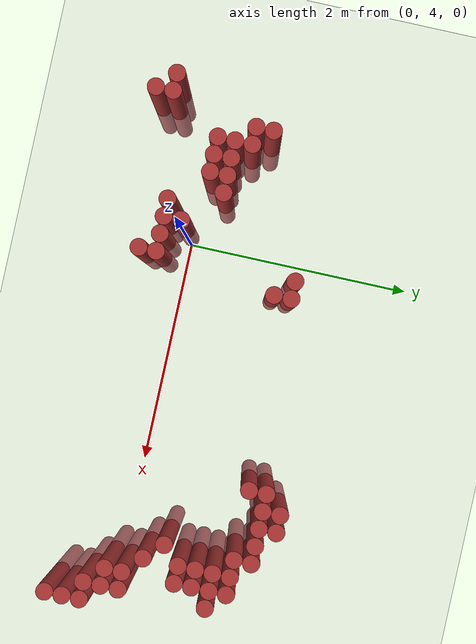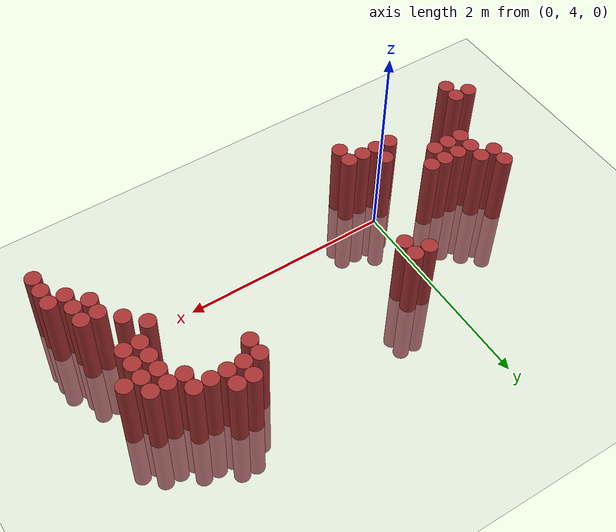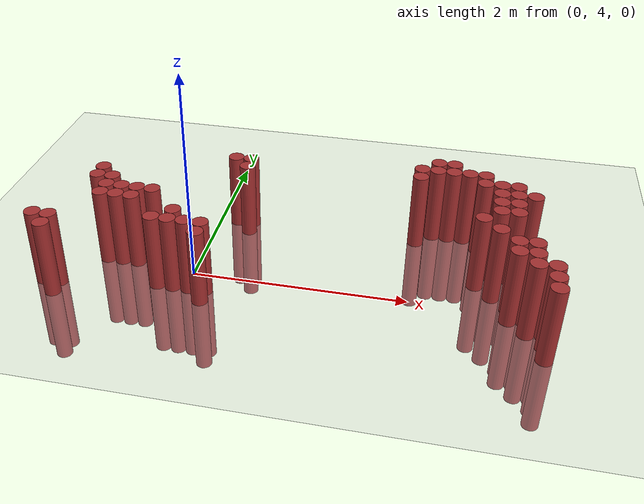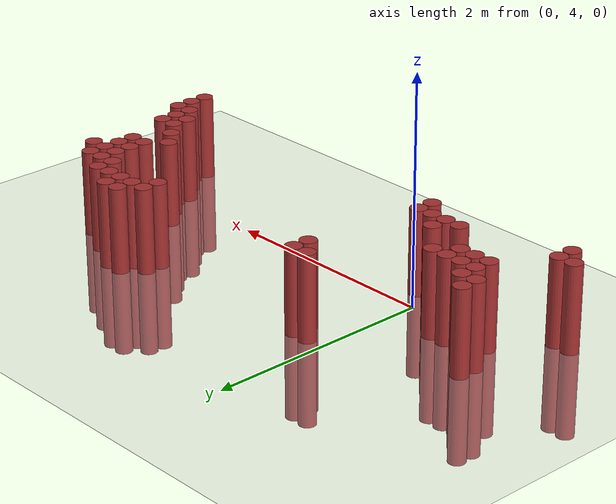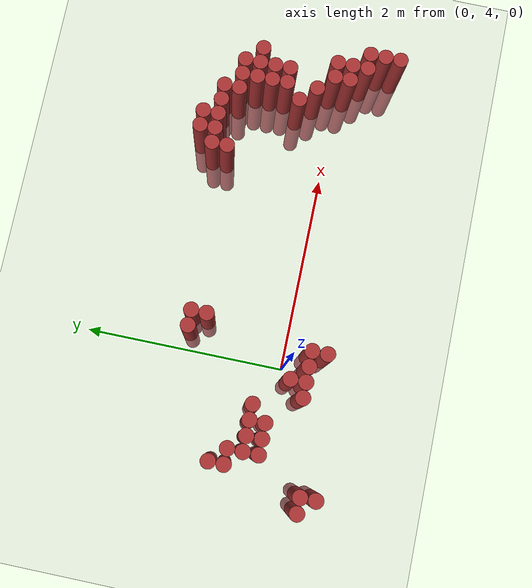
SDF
<sdf version="1.6">
 <world name="default">
  <model name="ground_plane">
   <static>1</static>
   <link name="link">
    <collision name="collision">
     <geometry><plane><normal>0 0 1</normal><size>100 100</size></plane></geometry>
     <surface><friction><ode><mu>100</mu><mu2>50</mu2></ode></friction></surface>
    </collision>
    <visual name="visual">
     <cast_shadows>0</cast_shadows>
     <geometry><plane><normal>0 0 1</normal><size>100 100</size></plane></geometry>
     <material>
      <script><uri>file://media/materials/scripts/gazebo.material</uri><name>Gazebo/Grey</name></script>
     </material>
    </visual>
   </link>
  </model>
  <model name="unit_cylinder_390">
   <static>1</static>
   <pose>-1.325000 3.625000 0.000000 0.000000 0.000000 0.000000</pose>
   <link name="link">
    <inertial>
     <mass>1</mass>
     <inertia><ixx>0.145833</ixx><ixy>0</ixy><ixz>0</ixz><iyy>0.145833</iyy><iyz>0</iyz><izz>0.125</izz></inertia>
    </inertial>
    <collision name="collision">
     <geometry><cylinder><radius>0.075000</radius><length>1.5</length></cylinder></geometry>
    </collision>
    <visual name="visual">
     <geometry><cylinder><radius>0.075000</radius><length>1.5</length></cylinder></geometry>
     <material>
      <ambient>0.648000 0.192000 0.192000 1</ambient>
      <diffuse>0.648000 0.192000 0.192000 1</diffuse>
     </material>
     <material>
      <script><name>Gazebo/Grey</name><uri>file://media/materials/scripts/gazebo.material</uri></script>
     </material>
    </visual>
   </link>
  </model>
  <model name="unit_cylinder_394">
   <static>1</static>
   <pose>-1.175000 3.475000 0.000000 0.000000 0.000000 0.000000</pose>
   <link name="link">
    <inertial>
     <mass>1</mass>
     <inertia><ixx>0.145833</ixx><ixy>0</ixy><ixz>0</ixz><iyy>0.145833</iyy><iyz>0</iyz><izz>0.125</izz></inertia>
    </inertial>
    <collision name="collision">
     <geometry><cylinder><radius>0.075000</radius><length>1.5</length></cylinder></geometry>
    </collision>
    <visual name="visual">
     <geometry><cylinder><radius>0.075000</radius><length>1.5</length></cylinder></geometry>
     <material>
      <ambient>0.648000 0.192000 0.192000 1</ambient>
      <diffuse>0.648000 0.192000 0.192000 1</diffuse>
     </material>
     <material>
      <script><name>Gazebo/Grey</name><uri>file://media/materials/scripts/gazebo.material</uri></script>
     </material>
    </visual>
   </link>
  </model>
  <model name="unit_cylinder_395">
   <static>1</static>
   <pose>-1.175000 3.625000 0.000000 0.000000 0.000000 0.000000</pose>
   <link name="link">
    <inertial>
     <mass>1</mass>
     <inertia><ixx>0.145833</ixx><ixy>0</ixy><ixz>0</ixz><iyy>0.145833</iyy><iyz>0</iyz><izz>0.125</izz></inertia>
    </inertial>
    <collision name="collision">
     <geometry><cylinder><radius>0.075000</radius><length>1.5</length></cylinder></geometry>
    </collision>
    <visual name="visual">
     <geometry><cylinder><radius>0.075000</radius><length>1.5</length></cylinder></geometry>
     <material>
      <ambient>0.648000 0.192000 0.192000 1</ambient>
      <diffuse>0.648000 0.192000 0.192000 1</diffuse>
     </material>
     <material>
      <script><name>Gazebo/Grey</name><uri>file://media/materials/scripts/gazebo.material</uri></script>
     </material>
    </visual>
   </link>
  </model>
  <model name="unit_cylinder_398">
   <static>1</static>
   <pose>-1.025000 4.375000 0.000000 0.000000 0.000000 0.000000</pose>
   <link name="link">
    <inertial>
     <mass>1</mass>
     <inertia><ixx>0.145833</ixx><ixy>0</ixy><ixz>0</ixz><iyy>0.145833</iyy><iyz>0</iyz><izz>0.125</izz></inertia>
    </inertial>
    <collision name="collision">
     <geometry><cylinder><radius>0.075000</radius><length>1.5</length></cylinder></geometry>
    </collision>
    <visual name="visual">
     <geometry><cylinder><radius>0.075000</radius><length>1.5</length></cylinder></geometry>
     <material>
      <ambient>0.648000 0.192000 0.192000 1</ambient>
      <diffuse>0.648000 0.192000 0.192000 1</diffuse>
     </material>
     <material>
      <script><name>Gazebo/Grey</name><uri>file://media/materials/scripts/gazebo.material</uri></script>
     </material>
    </visual>
   </link>
  </model>
  <model name="unit_cylinder_399">
   <static>1</static>
   <pose>-1.025000 4.525000 0.000000 0.000000 0.000000 0.000000</pose>
   <link name="link">
    <inertial>
     <mass>1</mass>
     <inertia><ixx>0.145833</ixx><ixy>0</ixy><ixz>0</ixz><iyy>0.145833</iyy><iyz>0</iyz><izz>0.125</izz></inertia>
    </inertial>
    <collision name="collision">
     <geometry><cylinder><radius>0.075000</radius><length>1.5</length></cylinder></geometry>
    </collision>
    <visual name="visual">
     <geometry><cylinder><radius>0.075000</radius><length>1.5</length></cylinder></geometry>
     <material>
      <ambient>0.648000 0.192000 0.192000 1</ambient>
      <diffuse>0.648000 0.192000 0.192000 1</diffuse>
     </material>
     <material>
      <script><name>Gazebo/Grey</name><uri>file://media/materials/scripts/gazebo.material</uri></script>
     </material>
    </visual>
   </link>
  </model>
  <model name="unit_cylinder_405">
   <static>1</static>
   <pose>-0.875000 4.075000 0.000000 0.000000 0.000000 0.000000</pose>
   <link name="link">
    <inertial>
     <mass>1</mass>
     <inertia><ixx>0.145833</ixx><ixy>0</ixy><ixz>0</ixz><iyy>0.145833</iyy><iyz>0</iyz><izz>0.125</izz></inertia>
    </inertial>
    <collision name="collision">
     <geometry><cylinder><radius>0.075000</radius><length>1.5</length></cylinder></geometry>
    </collision>
    <visual name="visual">
     <geometry><cylinder><radius>0.075000</radius><length>1.5</length></cylinder></geometry>
     <material>
      <ambient>0.648000 0.192000 0.192000 1</ambient>
      <diffuse>0.648000 0.192000 0.192000 1</diffuse>
     </material>
     <material>
      <script><name>Gazebo/Grey</name><uri>file://media/materials/scripts/gazebo.material</uri></script>
     </material>
    </visual>
   </link>
  </model>
  <model name="unit_cylinder_406">
   <static>1</static>
   <pose>-0.875000 4.225000 0.000000 0.000000 0.000000 0.000000</pose>
   <link name="link">
    <inertial>
     <mass>1</mass>
     <inertia><ixx>0.145833</ixx><ixy>0</ixy><ixz>0</ixz><iyy>0.145833</iyy><iyz>0</iyz><izz>0.125</izz></inertia>
    </inertial>
    <collision name="collision">
     <geometry><cylinder><radius>0.075000</radius><length>1.5</length></cylinder></geometry>
    </collision>
    <visual name="visual">
     <geometry><cylinder><radius>0.075000</radius><length>1.5</length></cylinder></geometry>
     <material>
      <ambient>0.648000 0.192000 0.192000 1</ambient>
      <diffuse>0.648000 0.192000 0.192000 1</diffuse>
     </material>
     <material>
      <script><name>Gazebo/Grey</name><uri>file://media/materials/scripts/gazebo.material</uri></script>
     </material>
    </visual>
   </link>
  </model>
  <model name="unit_cylinder_407">
   <static>1</static>
   <pose>-0.875000 4.375000 0.000000 0.000000 0.000000 0.000000</pose>
   <link name="link">
    <inertial>
     <mass>1</mass>
     <inertia><ixx>0.145833</ixx><ixy>0</ixy><ixz>0</ixz><iyy>0.145833</iyy><iyz>0</iyz><izz>0.125</izz></inertia>
    </inertial>
    <collision name="collision">
     <geometry><cylinder><radius>0.075000</radius><length>1.5</length></cylinder></geometry>
    </collision>
    <visual name="visual">
     <geometry><cylinder><radius>0.075000</radius><length>1.5</length></cylinder></geometry>
     <material>
      <ambient>0.648000 0.192000 0.192000 1</ambient>
      <diffuse>0.648000 0.192000 0.192000 1</diffuse>
     </material>
     <material>
      <script><name>Gazebo/Grey</name><uri>file://media/materials/scripts/gazebo.material</uri></script>
     </material>
    </visual>
   </link>
  </model>
  <model name="unit_cylinder_414">
   <static>1</static>
   <pose>-0.725000 4.075000 0.000000 0.000000 0.000000 0.000000</pose>
   <link name="link">
    <inertial>
     <mass>1</mass>
     <inertia><ixx>0.145833</ixx><ixy>0</ixy><ixz>0</ixz><iyy>0.145833</iyy><iyz>0</iyz><izz>0.125</izz></inertia>
    </inertial>
    <collision name="collision">
     <geometry><cylinder><radius>0.075000</radius><length>1.5</length></cylinder></geometry>
    </collision>
    <visual name="visual">
     <geometry><cylinder><radius>0.075000</radius><length>1.5</length></cylinder></geometry>
     <material>
      <ambient>0.648000 0.192000 0.192000 1</ambient>
      <diffuse>0.648000 0.192000 0.192000 1</diffuse>
     </material>
     <material>
      <script><name>Gazebo/Grey</name><uri>file://media/materials/scripts/gazebo.material</uri></script>
     </material>
    </visual>
   </link>
  </model>
  <model name="unit_cylinder_415">
   <static>1</static>
   <pose>-0.725000 4.225000 0.000000 0.000000 0.000000 0.000000</pose>
   <link name="link">
    <inertial>
     <mass>1</mass>
     <inertia><ixx>0.145833</ixx><ixy>0</ixy><ixz>0</ixz><iyy>0.145833</iyy><iyz>0</iyz><izz>0.125</izz></inertia>
    </inertial>
    <collision name="collision">
     <geometry><cylinder><radius>0.075000</radius><length>1.5</length></cylinder></geometry>
    </collision>
    <visual name="visual">
     <geometry><cylinder><radius>0.075000</radius><length>1.5</length></cylinder></geometry>
     <material>
      <ambient>0.648000 0.192000 0.192000 1</ambient>
      <diffuse>0.648000 0.192000 0.192000 1</diffuse>
     </material>
     <material>
      <script><name>Gazebo/Grey</name><uri>file://media/materials/scripts/gazebo.material</uri></script>
     </material>
    </visual>
   </link>
  </model>
  <model name="unit_cylinder_422">
   <static>1</static>
   <pose>-0.575000 4.075000 0.000000 0.000000 0.000000 0.000000</pose>
   <link name="link">
    <inertial>
     <mass>1</mass>
     <inertia><ixx>0.145833</ixx><ixy>0</ixy><ixz>0</ixz><iyy>0.145833</iyy><iyz>0</iyz><izz>0.125</izz></inertia>
    </inertial>
    <collision name="collision">
     <geometry><cylinder><radius>0.075000</radius><length>1.5</length></cylinder></geometry>
    </collision>
    <visual name="visual">
     <geometry><cylinder><radius>0.075000</radius><length>1.5</length></cylinder></geometry>
     <material>
      <ambient>0.648000 0.192000 0.192000 1</ambient>
      <diffuse>0.648000 0.192000 0.192000 1</diffuse>
     </material>
     <material>
      <script><name>Gazebo/Grey</name><uri>file://media/materials/scripts/gazebo.material</uri></script>
     </material>
    </visual>
   </link>
  </model>
  <model name="unit_cylinder_423">
   <static>1</static>
   <pose>-0.575000 4.225000 0.000000 0.000000 0.000000 0.000000</pose>
   <link name="link">
    <inertial>
     <mass>1</mass>
     <inertia><ixx>0.145833</ixx><ixy>0</ixy><ixz>0</ixz><iyy>0.145833</iyy><iyz>0</iyz><izz>0.125</izz></inertia>
    </inertial>
    <collision name="collision">
     <geometry><cylinder><radius>0.075000</radius><length>1.5</length></cylinder></geometry>
    </collision>
    <visual name="visual">
     <geometry><cylinder><radius>0.075000</radius><length>1.5</length></cylinder></geometry>
     <material>
      <ambient>0.648000 0.192000 0.192000 1</ambient>
      <diffuse>0.648000 0.192000 0.192000 1</diffuse>
     </material>
     <material>
      <script><name>Gazebo/Grey</name><uri>file://media/materials/scripts/gazebo.material</uri></script>
     </material>
    </visual>
   </link>
  </model>
  <model name="unit_cylinder_432">
   <static>1</static>
   <pose>-0.425000 4.225000 0.000000 0.000000 0.000000 0.000000</pose>
   <link name="link">
    <inertial>
     <mass>1</mass>
     <inertia><ixx>0.145833</ixx><ixy>0</ixy><ixz>0</ixz><iyy>0.145833</iyy><iyz>0</iyz><izz>0.125</izz></inertia>
    </inertial>
    <collision name="collision">
     <geometry><cylinder><radius>0.075000</radius><length>1.5</length></cylinder></geometry>
    </collision>
    <visual name="visual">
     <geometry><cylinder><radius>0.075000</radius><length>1.5</length></cylinder></geometry>
     <material>
      <ambient>0.648000 0.192000 0.192000 1</ambient>
      <diffuse>0.648000 0.192000 0.192000 1</diffuse>
     </material>
     <material>
      <script><name>Gazebo/Grey</name><uri>file://media/materials/scripts/gazebo.material</uri></script>
     </material>
    </visual>
   </link>
  </model>
  <model name="unit_cylinder_440">
   <static>1</static>
   <pose>-0.275000 3.775000 0.000000 0.000000 0.000000 0.000000</pose>
   <link name="link">
    <inertial>
     <mass>1</mass>
     <inertia><ixx>0.145833</ixx><ixy>0</ixy><ixz>0</ixz><iyy>0.145833</iyy><iyz>0</iyz><izz>0.125</izz></inertia>
    </inertial>
    <collision name="collision">
     <geometry><cylinder><radius>0.075000</radius><length>1.5</length></cylinder></geometry>
    </collision>
    <visual name="visual">
     <geometry><cylinder><radius>0.075000</radius><length>1.5</length></cylinder></geometry>
     <material>
      <ambient>0.648000 0.192000 0.192000 1</ambient>
      <diffuse>0.648000 0.192000 0.192000 1</diffuse>
     </material>
     <material>
      <script><name>Gazebo/Grey</name><uri>file://media/materials/scripts/gazebo.material</uri></script>
     </material>
    </visual>
   </link>
  </model>
  <model name="unit_cylinder_446">
   <static>1</static>
   <pose>-0.125000 3.775000 0.000000 0.000000 0.000000 0.000000</pose>
   <link name="link">
    <inertial>
     <mass>1</mass>
     <inertia><ixx>0.145833</ixx><ixy>0</ixy><ixz>0</ixz><iyy>0.145833</iyy><iyz>0</iyz><izz>0.125</izz></inertia>
    </inertial>
    <collision name="collision">
     <geometry><cylinder><radius>0.075000</radius><length>1.5</length></cylinder></geometry>
    </collision>
    <visual name="visual">
     <geometry><cylinder><radius>0.075000</radius><length>1.5</length></cylinder></geometry>
     <material>
      <ambient>0.648000 0.192000 0.192000 1</ambient>
      <diffuse>0.648000 0.192000 0.192000 1</diffuse>
     </material>
     <material>
      <script><name>Gazebo/Grey</name><uri>file://media/materials/scripts/gazebo.material</uri></script>
     </material>
    </visual>
   </link>
  </model>
  <model name="unit_cylinder_447">
   <static>1</static>
   <pose>-0.125000 3.925000 0.000000 0.000000 0.000000 0.000000</pose>
   <link name="link">
    <inertial>
     <mass>1</mass>
     <inertia><ixx>0.145833</ixx><ixy>0</ixy><ixz>0</ixz><iyy>0.145833</iyy><iyz>0</iyz><izz>0.125</izz></inertia>
    </inertial>
    <collision name="collision">
     <geometry><cylinder><radius>0.075000</radius><length>1.5</length></cylinder></geometry>
    </collision>
    <visual name="visual">
     <geometry><cylinder><radius>0.075000</radius><length>1.5</length></cylinder></geometry>
     <material>
      <ambient>0.648000 0.192000 0.192000 1</ambient>
      <diffuse>0.648000 0.192000 0.192000 1</diffuse>
     </material>
     <material>
      <script><name>Gazebo/Grey</name><uri>file://media/materials/scripts/gazebo.material</uri></script>
     </material>
    </visual>
   </link>
  </model>
  <model name="unit_cylinder_451">
   <static>1</static>
   <pose>0.025000 3.775000 0.000000 0.000000 0.000000 0.000000</pose>
   <link name="link">
    <inertial>
     <mass>1</mass>
     <inertia><ixx>0.145833</ixx><ixy>0</ixy><ixz>0</ixz><iyy>0.145833</iyy><iyz>0</iyz><izz>0.125</izz></inertia>
    </inertial>
    <collision name="collision">
     <geometry><cylinder><radius>0.075000</radius><length>1.5</length></cylinder></geometry>
    </collision>
    <visual name="visual">
     <geometry><cylinder><radius>0.075000</radius><length>1.5</length></cylinder></geometry>
     <material>
      <ambient>0.648000 0.192000 0.192000 1</ambient>
      <diffuse>0.648000 0.192000 0.192000 1</diffuse>
     </material>
     <material>
      <script><name>Gazebo/Grey</name><uri>file://media/materials/scripts/gazebo.material</uri></script>
     </material>
    </visual>
   </link>
  </model>
  <model name="unit_cylinder_455">
   <static>1</static>
   <pose>0.175000 3.625000 0.000000 0.000000 0.000000 0.000000</pose>
   <link name="link">
    <inertial>
     <mass>1</mass>
     <inertia><ixx>0.145833</ixx><ixy>0</ixy><ixz>0</ixz><iyy>0.145833</iyy><iyz>0</iyz><izz>0.125</izz></inertia>
    </inertial>
    <collision name="collision">
     <geometry><cylinder><radius>0.075000</radius><length>1.5</length></cylinder></geometry>
    </collision>
    <visual name="visual">
     <geometry><cylinder><radius>0.075000</radius><length>1.5</length></cylinder></geometry>
     <material>
      <ambient>0.648000 0.192000 0.192000 1</ambient>
      <diffuse>0.648000 0.192000 0.192000 1</diffuse>
     </material>
     <material>
      <script><name>Gazebo/Grey</name><uri>file://media/materials/scripts/gazebo.material</uri></script>
     </material>
    </visual>
   </link>
  </model>
  <model name="unit_cylinder_456">
   <static>1</static>
   <pose>0.175000 3.775000 0.000000 0.000000 0.000000 0.000000</pose>
   <link name="link">
    <inertial>
     <mass>1</mass>
     <inertia><ixx>0.145833</ixx><ixy>0</ixy><ixz>0</ixz><iyy>0.145833</iyy><iyz>0</iyz><izz>0.125</izz></inertia>
    </inertial>
    <collision name="collision">
     <geometry><cylinder><radius>0.075000</radius><length>1.5</length></cylinder></geometry>
    </collision>
    <visual name="visual">
     <geometry><cylinder><radius>0.075000</radius><length>1.5</length></cylinder></geometry>
     <material>
      <ambient>0.648000 0.192000 0.192000 1</ambient>
      <diffuse>0.648000 0.192000 0.192000 1</diffuse>
     </material>
     <material>
      <script><name>Gazebo/Grey</name><uri>file://media/materials/scripts/gazebo.material</uri></script>
     </material>
    </visual>
   </link>
  </model>
  <model name="unit_cylinder_457">
   <static>1</static>
   <pose>0.175000 4.975000 0.000000 0.000000 0.000000 0.000000</pose>
   <link name="link">
    <inertial>
     <mass>1</mass>
     <inertia><ixx>0.145833</ixx><ixy>0</ixy><ixz>0</ixz><iyy>0.145833</iyy><iyz>0</iyz><izz>0.125</izz></inertia>
    </inertial>
    <collision name="collision">
     <geometry><cylinder><radius>0.075000</radius><length>1.5</length></cylinder></geometry>
    </collision>
    <visual name="visual">
     <geometry><cylinder><radius>0.075000</radius><length>1.5</length></cylinder></geometry>
     <material>
      <ambient>0.648000 0.192000 0.192000 1</ambient>
      <diffuse>0.648000 0.192000 0.192000 1</diffuse>
     </material>
     <material>
      <script><name>Gazebo/Grey</name><uri>file://media/materials/scripts/gazebo.material</uri></script>
     </material>
    </visual>
   </link>
  </model>
  <model name="unit_cylinder_462">
   <static>1</static>
   <pose>0.325000 4.825000 0.000000 0.000000 0.000000 0.000000</pose>
   <link name="link">
    <inertial>
     <mass>1</mass>
     <inertia><ixx>0.145833</ixx><ixy>0</ixy><ixz>0</ixz><iyy>0.145833</iyy><iyz>0</iyz><izz>0.125</izz></inertia>
    </inertial>
    <collision name="collision">
     <geometry><cylinder><radius>0.075000</radius><length>1.5</length></cylinder></geometry>
    </collision>
    <visual name="visual">
     <geometry><cylinder><radius>0.075000</radius><length>1.5</length></cylinder></geometry>
     <material>
      <ambient>0.648000 0.192000 0.192000 1</ambient>
      <diffuse>0.648000 0.192000 0.192000 1</diffuse>
     </material>
     <material>
      <script><name>Gazebo/Grey</name><uri>file://media/materials/scripts/gazebo.material</uri></script>
     </material>
    </visual>
   </link>
  </model>
  <model name="unit_cylinder_463">
   <static>1</static>
   <pose>0.325000 4.975000 0.000000 0.000000 0.000000 0.000000</pose>
   <link name="link">
    <inertial>
     <mass>1</mass>
     <inertia><ixx>0.145833</ixx><ixy>0</ixy><ixz>0</ixz><iyy>0.145833</iyy><iyz>0</iyz><izz>0.125</izz></inertia>
    </inertial>
    <collision name="collision">
     <geometry><cylinder><radius>0.075000</radius><length>1.5</length></cylinder></geometry>
    </collision>
    <visual name="visual">
     <geometry><cylinder><radius>0.075000</radius><length>1.5</length></cylinder></geometry>
     <material>
      <ambient>0.648000 0.192000 0.192000 1</ambient>
      <diffuse>0.648000 0.192000 0.192000 1</diffuse>
     </material>
     <material>
      <script><name>Gazebo/Grey</name><uri>file://media/materials/scripts/gazebo.material</uri></script>
     </material>
    </visual>
   </link>
  </model>
  <model name="unit_cylinder_487">
   <static>1</static>
   <pose>1.975000 4.975000 0.000000 0.000000 0.000000 0.000000</pose>
   <link name="link">
    <inertial>
     <mass>1</mass>
     <inertia><ixx>0.145833</ixx><ixy>0</ixy><ixz>0</ixz><iyy>0.145833</iyy><iyz>0</iyz><izz>0.125</izz></inertia>
    </inertial>
    <collision name="collision">
     <geometry><cylinder><radius>0.075000</radius><length>1.5</length></cylinder></geometry>
    </collision>
    <visual name="visual">
     <geometry><cylinder><radius>0.075000</radius><length>1.5</length></cylinder></geometry>
     <material>
      <ambient>0.648000 0.192000 0.192000 1</ambient>
      <diffuse>0.648000 0.192000 0.192000 1</diffuse>
     </material>
     <material>
      <script><name>Gazebo/Grey</name><uri>file://media/materials/scripts/gazebo.material</uri></script>
     </material>
    </visual>
   </link>
  </model>
  <model name="unit_cylinder_488">
   <static>1</static>
   <pose>1.975000 5.125000 0.000000 0.000000 0.000000 0.000000</pose>
   <link name="link">
    <inertial>
     <mass>1</mass>
     <inertia><ixx>0.145833</ixx><ixy>0</ixy><ixz>0</ixz><iyy>0.145833</iyy><iyz>0</iyz><izz>0.125</izz></inertia>
    </inertial>
    <collision name="collision">
     <geometry><cylinder><radius>0.075000</radius><length>1.5</length></cylinder></geometry>
    </collision>
    <visual name="visual">
     <geometry><cylinder><radius>0.075000</radius><length>1.5</length></cylinder></geometry>
     <material>
      <ambient>0.648000 0.192000 0.192000 1</ambient>
      <diffuse>0.648000 0.192000 0.192000 1</diffuse>
     </material>
     <material>
      <script><name>Gazebo/Grey</name><uri>file://media/materials/scripts/gazebo.material</uri></script>
     </material>
    </visual>
   </link>
  </model>
  <model name="unit_cylinder_490">
   <static>1</static>
   <pose>2.125000 5.125000 0.000000 0.000000 0.000000 0.000000</pose>
   <link name="link">
    <inertial>
     <mass>1</mass>
     <inertia><ixx>0.145833</ixx><ixy>0</ixy><ixz>0</ixz><iyy>0.145833</iyy><iyz>0</iyz><izz>0.125</izz></inertia>
    </inertial>
    <collision name="collision">
     <geometry><cylinder><radius>0.075000</radius><length>1.5</length></cylinder></geometry>
    </collision>
    <visual name="visual">
     <geometry><cylinder><radius>0.075000</radius><length>1.5</length></cylinder></geometry>
     <material>
      <ambient>0.648000 0.192000 0.192000 1</ambient>
      <diffuse>0.648000 0.192000 0.192000 1</diffuse>
     </material>
     <material>
      <script><name>Gazebo/Grey</name><uri>file://media/materials/scripts/gazebo.material</uri></script>
     </material>
    </visual>
   </link>
  </model>
  <model name="unit_cylinder_491">
   <static>1</static>
   <pose>2.125000 5.275000 0.000000 0.000000 0.000000 0.000000</pose>
   <link name="link">
    <inertial>
     <mass>1</mass>
     <inertia><ixx>0.145833</ixx><ixy>0</ixy><ixz>0</ixz><iyy>0.145833</iyy><iyz>0</iyz><izz>0.125</izz></inertia>
    </inertial>
    <collision name="collision">
     <geometry><cylinder><radius>0.075000</radius><length>1.5</length></cylinder></geometry>
    </collision>
    <visual name="visual">
     <geometry><cylinder><radius>0.075000</radius><length>1.5</length></cylinder></geometry>
     <material>
      <ambient>0.648000 0.192000 0.192000 1</ambient>
      <diffuse>0.648000 0.192000 0.192000 1</diffuse>
     </material>
     <material>
      <script><name>Gazebo/Grey</name><uri>file://media/materials/scripts/gazebo.material</uri></script>
     </material>
    </visual>
   </link>
  </model>
  <model name="unit_cylinder_494">
   <static>1</static>
   <pose>2.275000 5.125000 0.000000 0.000000 0.000000 0.000000</pose>
   <link name="link">
    <inertial>
     <mass>1</mass>
     <inertia><ixx>0.145833</ixx><ixy>0</ixy><ixz>0</ixz><iyy>0.145833</iyy><iyz>0</iyz><izz>0.125</izz></inertia>
    </inertial>
    <collision name="collision">
     <geometry><cylinder><radius>0.075000</radius><length>1.5</length></cylinder></geometry>
    </collision>
    <visual name="visual">
     <geometry><cylinder><radius>0.075000</radius><length>1.5</length></cylinder></geometry>
     <material>
      <ambient>0.648000 0.192000 0.192000 1</ambient>
      <diffuse>0.648000 0.192000 0.192000 1</diffuse>
     </material>
     <material>
      <script><name>Gazebo/Grey</name><uri>file://media/materials/scripts/gazebo.material</uri></script>
     </material>
    </visual>
   </link>
  </model>
  <model name="unit_cylinder_495">
   <static>1</static>
   <pose>2.275000 5.275000 0.000000 0.000000 0.000000 0.000000</pose>
   <link name="link">
    <inertial>
     <mass>1</mass>
     <inertia><ixx>0.145833</ixx><ixy>0</ixy><ixz>0</ixz><iyy>0.145833</iyy><iyz>0</iyz><izz>0.125</izz></inertia>
    </inertial>
    <collision name="collision">
     <geometry><cylinder><radius>0.075000</radius><length>1.5</length></cylinder></geometry>
    </collision>
    <visual name="visual">
     <geometry><cylinder><radius>0.075000</radius><length>1.5</length></cylinder></geometry>
     <material>
      <ambient>0.648000 0.192000 0.192000 1</ambient>
      <diffuse>0.648000 0.192000 0.192000 1</diffuse>
     </material>
     <material>
      <script><name>Gazebo/Grey</name><uri>file://media/materials/scripts/gazebo.material</uri></script>
     </material>
    </visual>
   </link>
  </model>
  <model name="unit_cylinder_496">
   <static>1</static>
   <pose>2.425000 5.125000 0.000000 0.000000 0.000000 0.000000</pose>
   <link name="link">
    <inertial>
     <mass>1</mass>
     <inertia><ixx>0.145833</ixx><ixy>0</ixy><ixz>0</ixz><iyy>0.145833</iyy><iyz>0</iyz><izz>0.125</izz></inertia>
    </inertial>
    <collision name="collision">
     <geometry><cylinder><radius>0.075000</radius><length>1.5</length></cylinder></geometry>
    </collision>
    <visual name="visual">
     <geometry><cylinder><radius>0.075000</radius><length>1.5</length></cylinder></geometry>
     <material>
      <ambient>0.648000 0.192000 0.192000 1</ambient>
      <diffuse>0.648000 0.192000 0.192000 1</diffuse>
     </material>
     <material>
      <script><name>Gazebo/Grey</name><uri>file://media/materials/scripts/gazebo.material</uri></script>
     </material>
    </visual>
   </link>
  </model>
  <model name="unit_cylinder_501">
   <static>1</static>
   <pose>2.575000 4.375000 0.000000 0.000000 0.000000 0.000000</pose>
   <link name="link">
    <inertial>
     <mass>1</mass>
     <inertia><ixx>0.145833</ixx><ixy>0</ixy><ixz>0</ixz><iyy>0.145833</iyy><iyz>0</iyz><izz>0.125</izz></inertia>
    </inertial>
    <collision name="collision">
     <geometry><cylinder><radius>0.075000</radius><length>1.5</length></cylinder></geometry>
    </collision>
    <visual name="visual">
     <geometry><cylinder><radius>0.075000</radius><length>1.5</length></cylinder></geometry>
     <material>
      <ambient>0.648000 0.192000 0.192000 1</ambient>
      <diffuse>0.648000 0.192000 0.192000 1</diffuse>
     </material>
     <material>
      <script><name>Gazebo/Grey</name><uri>file://media/materials/scripts/gazebo.material</uri></script>
     </material>
    </visual>
   </link>
  </model>
  <model name="unit_cylinder_502">
   <static>1</static>
   <pose>2.575000 4.975000 0.000000 0.000000 0.000000 0.000000</pose>
   <link name="link">
    <inertial>
     <mass>1</mass>
     <inertia><ixx>0.145833</ixx><ixy>0</ixy><ixz>0</ixz><iyy>0.145833</iyy><iyz>0</iyz><izz>0.125</izz></inertia>
    </inertial>
    <collision name="collision">
     <geometry><cylinder><radius>0.075000</radius><length>1.5</length></cylinder></geometry>
    </collision>
    <visual name="visual">
     <geometry><cylinder><radius>0.075000</radius><length>1.5</length></cylinder></geometry>
     <material>
      <ambient>0.648000 0.192000 0.192000 1</ambient>
      <diffuse>0.648000 0.192000 0.192000 1</diffuse>
     </material>
     <material>
      <script><name>Gazebo/Grey</name><uri>file://media/materials/scripts/gazebo.material</uri></script>
     </material>
    </visual>
   </link>
  </model>
  <model name="unit_cylinder_503">
   <static>1</static>
   <pose>2.575000 5.125000 0.000000 0.000000 0.000000 0.000000</pose>
   <link name="link">
    <inertial>
     <mass>1</mass>
     <inertia><ixx>0.145833</ixx><ixy>0</ixy><ixz>0</ixz><iyy>0.145833</iyy><iyz>0</iyz><izz>0.125</izz></inertia>
    </inertial>
    <collision name="collision">
     <geometry><cylinder><radius>0.075000</radius><length>1.5</length></cylinder></geometry>
    </collision>
    <visual name="visual">
     <geometry><cylinder><radius>0.075000</radius><length>1.5</length></cylinder></geometry>
     <material>
      <ambient>0.648000 0.192000 0.192000 1</ambient>
      <diffuse>0.648000 0.192000 0.192000 1</diffuse>
     </material>
     <material>
      <script><name>Gazebo/Grey</name><uri>file://media/materials/scripts/gazebo.material</uri></script>
     </material>
    </visual>
   </link>
  </model>
  <model name="unit_cylinder_510">
   <static>1</static>
   <pose>2.725000 4.225000 0.000000 0.000000 0.000000 0.000000</pose>
   <link name="link">
    <inertial>
     <mass>1</mass>
     <inertia><ixx>0.145833</ixx><ixy>0</ixy><ixz>0</ixz><iyy>0.145833</iyy><iyz>0</iyz><izz>0.125</izz></inertia>
    </inertial>
    <collision name="collision">
     <geometry><cylinder><radius>0.075000</radius><length>1.5</length></cylinder></geometry>
    </collision>
    <visual name="visual">
     <geometry><cylinder><radius>0.075000</radius><length>1.5</length></cylinder></geometry>
     <material>
      <ambient>0.648000 0.192000 0.192000 1</ambient>
      <diffuse>0.648000 0.192000 0.192000 1</diffuse>
     </material>
     <material>
      <script><name>Gazebo/Grey</name><uri>file://media/materials/scripts/gazebo.material</uri></script>
     </material>
    </visual>
   </link>
  </model>
  <model name="unit_cylinder_511">
   <static>1</static>
   <pose>2.725000 4.525000 0.000000 0.000000 0.000000 0.000000</pose>
   <link name="link">
    <inertial>
     <mass>1</mass>
     <inertia><ixx>0.145833</ixx><ixy>0</ixy><ixz>0</ixz><iyy>0.145833</iyy><iyz>0</iyz><izz>0.125</izz></inertia>
    </inertial>
    <collision name="collision">
     <geometry><cylinder><radius>0.075000</radius><length>1.5</length></cylinder></geometry>
    </collision>
    <visual name="visual">
     <geometry><cylinder><radius>0.075000</radius><length>1.5</length></cylinder></geometry>
     <material>
      <ambient>0.648000 0.192000 0.192000 1</ambient>
      <diffuse>0.648000 0.192000 0.192000 1</diffuse>
     </material>
     <material>
      <script><name>Gazebo/Grey</name><uri>file://media/materials/scripts/gazebo.material</uri></script>
     </material>
    </visual>
   </link>
  </model>
  <model name="unit_cylinder_512">
   <static>1</static>
   <pose>2.725000 4.675000 0.000000 0.000000 0.000000 0.000000</pose>
   <link name="link">
    <inertial>
     <mass>1</mass>
     <inertia><ixx>0.145833</ixx><ixy>0</ixy><ixz>0</ixz><iyy>0.145833</iyy><iyz>0</iyz><izz>0.125</izz></inertia>
    </inertial>
    <collision name="collision">
     <geometry><cylinder><radius>0.075000</radius><length>1.5</length></cylinder></geometry>
    </collision>
    <visual name="visual">
     <geometry><cylinder><radius>0.075000</radius><length>1.5</length></cylinder></geometry>
     <material>
      <ambient>0.648000 0.192000 0.192000 1</ambient>
      <diffuse>0.648000 0.192000 0.192000 1</diffuse>
     </material>
     <material>
      <script><name>Gazebo/Grey</name><uri>file://media/materials/scripts/gazebo.material</uri></script>
     </material>
    </visual>
   </link>
  </model>
  <model name="unit_cylinder_513">
   <static>1</static>
   <pose>2.725000 4.825000 0.000000 0.000000 0.000000 0.000000</pose>
   <link name="link">
    <inertial>
     <mass>1</mass>
     <inertia><ixx>0.145833</ixx><ixy>0</ixy><ixz>0</ixz><iyy>0.145833</iyy><iyz>0</iyz><izz>0.125</izz></inertia>
    </inertial>
    <collision name="collision">
     <geometry><cylinder><radius>0.075000</radius><length>1.5</length></cylinder></geometry>
    </collision>
    <visual name="visual">
     <geometry><cylinder><radius>0.075000</radius><length>1.5</length></cylinder></geometry>
     <material>
      <ambient>0.648000 0.192000 0.192000 1</ambient>
      <diffuse>0.648000 0.192000 0.192000 1</diffuse>
     </material>
     <material>
      <script><name>Gazebo/Grey</name><uri>file://media/materials/scripts/gazebo.material</uri></script>
     </material>
    </visual>
   </link>
  </model>
  <model name="unit_cylinder_514">
   <static>1</static>
   <pose>2.725000 4.975000 0.000000 0.000000 0.000000 0.000000</pose>
   <link name="link">
    <inertial>
     <mass>1</mass>
     <inertia><ixx>0.145833</ixx><ixy>0</ixy><ixz>0</ixz><iyy>0.145833</iyy><iyz>0</iyz><izz>0.125</izz></inertia>
    </inertial>
    <collision name="collision">
     <geometry><cylinder><radius>0.075000</radius><length>1.5</length></cylinder></geometry>
    </collision>
    <visual name="visual">
     <geometry><cylinder><radius>0.075000</radius><length>1.5</length></cylinder></geometry>
     <material>
      <ambient>0.648000 0.192000 0.192000 1</ambient>
      <diffuse>0.648000 0.192000 0.192000 1</diffuse>
     </material>
     <material>
      <script><name>Gazebo/Grey</name><uri>file://media/materials/scripts/gazebo.material</uri></script>
     </material>
    </visual>
   </link>
  </model>
  <model name="unit_cylinder_524">
   <static>1</static>
   <pose>2.875000 3.925000 0.000000 0.000000 0.000000 0.000000</pose>
   <link name="link">
    <inertial>
     <mass>1</mass>
     <inertia><ixx>0.145833</ixx><ixy>0</ixy><ixz>0</ixz><iyy>0.145833</iyy><iyz>0</iyz><izz>0.125</izz></inertia>
    </inertial>
    <collision name="collision">
     <geometry><cylinder><radius>0.075000</radius><length>1.5</length></cylinder></geometry>
    </collision>
    <visual name="visual">
     <geometry><cylinder><radius>0.075000</radius><length>1.5</length></cylinder></geometry>
     <material>
      <ambient>0.648000 0.192000 0.192000 1</ambient>
      <diffuse>0.648000 0.192000 0.192000 1</diffuse>
     </material>
     <material>
      <script><name>Gazebo/Grey</name><uri>file://media/materials/scripts/gazebo.material</uri></script>
     </material>
    </visual>
   </link>
  </model>
  <model name="unit_cylinder_525">
   <static>1</static>
   <pose>2.875000 4.075000 0.000000 0.000000 0.000000 0.000000</pose>
   <link name="link">
    <inertial>
     <mass>1</mass>
     <inertia><ixx>0.145833</ixx><ixy>0</ixy><ixz>0</ixz><iyy>0.145833</iyy><iyz>0</iyz><izz>0.125</izz></inertia>
    </inertial>
    <collision name="collision">
     <geometry><cylinder><radius>0.075000</radius><length>1.5</length></cylinder></geometry>
    </collision>
    <visual name="visual">
     <geometry><cylinder><radius>0.075000</radius><length>1.5</length></cylinder></geometry>
     <material>
      <ambient>0.648000 0.192000 0.192000 1</ambient>
      <diffuse>0.648000 0.192000 0.192000 1</diffuse>
     </material>
     <material>
      <script><name>Gazebo/Grey</name><uri>file://media/materials/scripts/gazebo.material</uri></script>
     </material>
    </visual>
   </link>
  </model>
  <model name="unit_cylinder_526">
   <static>1</static>
   <pose>2.875000 4.525000 0.000000 0.000000 0.000000 0.000000</pose>
   <link name="link">
    <inertial>
     <mass>1</mass>
     <inertia><ixx>0.145833</ixx><ixy>0</ixy><ixz>0</ixz><iyy>0.145833</iyy><iyz>0</iyz><izz>0.125</izz></inertia>
    </inertial>
    <collision name="collision">
     <geometry><cylinder><radius>0.075000</radius><length>1.5</length></cylinder></geometry>
    </collision>
    <visual name="visual">
     <geometry><cylinder><radius>0.075000</radius><length>1.5</length></cylinder></geometry>
     <material>
      <ambient>0.648000 0.192000 0.192000 1</ambient>
      <diffuse>0.648000 0.192000 0.192000 1</diffuse>
     </material>
     <material>
      <script><name>Gazebo/Grey</name><uri>file://media/materials/scripts/gazebo.material</uri></script>
     </material>
    </visual>
   </link>
  </model>
  <model name="unit_cylinder_527">
   <static>1</static>
   <pose>2.875000 4.675000 0.000000 0.000000 0.000000 0.000000</pose>
   <link name="link">
    <inertial>
     <mass>1</mass>
     <inertia><ixx>0.145833</ixx><ixy>0</ixy><ixz>0</ixz><iyy>0.145833</iyy><iyz>0</iyz><izz>0.125</izz></inertia>
    </inertial>
    <collision name="collision">
     <geometry><cylinder><radius>0.075000</radius><length>1.5</length></cylinder></geometry>
    </collision>
    <visual name="visual">
     <geometry><cylinder><radius>0.075000</radius><length>1.5</length></cylinder></geometry>
     <material>
      <ambient>0.648000 0.192000 0.192000 1</ambient>
      <diffuse>0.648000 0.192000 0.192000 1</diffuse>
     </material>
     <material>
      <script><name>Gazebo/Grey</name><uri>file://media/materials/scripts/gazebo.material</uri></script>
     </material>
    </visual>
   </link>
  </model>
  <model name="unit_cylinder_528">
   <static>1</static>
   <pose>2.875000 4.825000 0.000000 0.000000 0.000000 0.000000</pose>
   <link name="link">
    <inertial>
     <mass>1</mass>
     <inertia><ixx>0.145833</ixx><ixy>0</ixy><ixz>0</ixz><iyy>0.145833</iyy><iyz>0</iyz><izz>0.125</izz></inertia>
    </inertial>
    <collision name="collision">
     <geometry><cylinder><radius>0.075000</radius><length>1.5</length></cylinder></geometry>
    </collision>
    <visual name="visual">
     <geometry><cylinder><radius>0.075000</radius><length>1.5</length></cylinder></geometry>
     <material>
      <ambient>0.648000 0.192000 0.192000 1</ambient>
      <diffuse>0.648000 0.192000 0.192000 1</diffuse>
     </material>
     <material>
      <script><name>Gazebo/Grey</name><uri>file://media/materials/scripts/gazebo.material</uri></script>
     </material>
    </visual>
   </link>
  </model>
  <model name="unit_cylinder_529">
   <static>1</static>
   <pose>2.875000 4.975000 0.000000 0.000000 0.000000 0.000000</pose>
   <link name="link">
    <inertial>
     <mass>1</mass>
     <inertia><ixx>0.145833</ixx><ixy>0</ixy><ixz>0</ixz><iyy>0.145833</iyy><iyz>0</iyz><izz>0.125</izz></inertia>
    </inertial>
    <collision name="collision">
     <geometry><cylinder><radius>0.075000</radius><length>1.5</length></cylinder></geometry>
    </collision>
    <visual name="visual">
     <geometry><cylinder><radius>0.075000</radius><length>1.5</length></cylinder></geometry>
     <material>
      <ambient>0.648000 0.192000 0.192000 1</ambient>
      <diffuse>0.648000 0.192000 0.192000 1</diffuse>
     </material>
     <material>
      <script><name>Gazebo/Grey</name><uri>file://media/materials/scripts/gazebo.material</uri></script>
     </material>
    </visual>
   </link>
  </model>
  <model name="unit_cylinder_535">
   <static>1</static>
   <pose>3.025000 3.775000 0.000000 0.000000 0.000000 0.000000</pose>
   <link name="link">
    <inertial>
     <mass>1</mass>
     <inertia><ixx>0.145833</ixx><ixy>0</ixy><ixz>0</ixz><iyy>0.145833</iyy><iyz>0</iyz><izz>0.125</izz></inertia>
    </inertial>
    <collision name="collision">
     <geometry><cylinder><radius>0.075000</radius><length>1.5</length></cylinder></geometry>
    </collision>
    <visual name="visual">
     <geometry><cylinder><radius>0.075000</radius><length>1.5</length></cylinder></geometry>
     <material>
      <ambient>0.648000 0.192000 0.192000 1</ambient>
      <diffuse>0.648000 0.192000 0.192000 1</diffuse>
     </material>
     <material>
      <script><name>Gazebo/Grey</name><uri>file://media/materials/scripts/gazebo.material</uri></script>
     </material>
    </visual>
   </link>
  </model>
  <model name="unit_cylinder_536">
   <static>1</static>
   <pose>3.025000 3.925000 0.000000 0.000000 0.000000 0.000000</pose>
   <link name="link">
    <inertial>
     <mass>1</mass>
     <inertia><ixx>0.145833</ixx><ixy>0</ixy><ixz>0</ixz><iyy>0.145833</iyy><iyz>0</iyz><izz>0.125</izz></inertia>
    </inertial>
    <collision name="collision">
     <geometry><cylinder><radius>0.075000</radius><length>1.5</length></cylinder></geometry>
    </collision>
    <visual name="visual">
     <geometry><cylinder><radius>0.075000</radius><length>1.5</length></cylinder></geometry>
     <material>
      <ambient>0.648000 0.192000 0.192000 1</ambient>
      <diffuse>0.648000 0.192000 0.192000 1</diffuse>
     </material>
     <material>
      <script><name>Gazebo/Grey</name><uri>file://media/materials/scripts/gazebo.material</uri></script>
     </material>
    </visual>
   </link>
  </model>
  <model name="unit_cylinder_537">
   <static>1</static>
   <pose>3.025000 4.075000 0.000000 0.000000 0.000000 0.000000</pose>
   <link name="link">
    <inertial>
     <mass>1</mass>
     <inertia><ixx>0.145833</ixx><ixy>0</ixy><ixz>0</ixz><iyy>0.145833</iyy><iyz>0</iyz><izz>0.125</izz></inertia>
    </inertial>
    <collision name="collision">
     <geometry><cylinder><radius>0.075000</radius><length>1.5</length></cylinder></geometry>
    </collision>
    <visual name="visual">
     <geometry><cylinder><radius>0.075000</radius><length>1.5</length></cylinder></geometry>
     <material>
      <ambient>0.648000 0.192000 0.192000 1</ambient>
      <diffuse>0.648000 0.192000 0.192000 1</diffuse>
     </material>
     <material>
      <script><name>Gazebo/Grey</name><uri>file://media/materials/scripts/gazebo.material</uri></script>
     </material>
    </visual>
   </link>
  </model>
  <model name="unit_cylinder_538">
   <static>1</static>
   <pose>3.025000 4.825000 0.000000 0.000000 0.000000 0.000000</pose>
   <link name="link">
    <inertial>
     <mass>1</mass>
     <inertia><ixx>0.145833</ixx><ixy>0</ixy><ixz>0</ixz><iyy>0.145833</iyy><iyz>0</iyz><izz>0.125</izz></inertia>
    </inertial>
    <collision name="collision">
     <geometry><cylinder><radius>0.075000</radius><length>1.5</length></cylinder></geometry>
    </collision>
    <visual name="visual">
     <geometry><cylinder><radius>0.075000</radius><length>1.5</length></cylinder></geometry>
     <material>
      <ambient>0.648000 0.192000 0.192000 1</ambient>
      <diffuse>0.648000 0.192000 0.192000 1</diffuse>
     </material>
     <material>
      <script><name>Gazebo/Grey</name><uri>file://media/materials/scripts/gazebo.material</uri></script>
     </material>
    </visual>
   </link>
  </model>
  <model name="unit_cylinder_546">
   <static>1</static>
   <pose>3.175000 3.475000 0.000000 0.000000 0.000000 0.000000</pose>
   <link name="link">
    <inertial>
     <mass>1</mass>
     <inertia><ixx>0.145833</ixx><ixy>0</ixy><ixz>0</ixz><iyy>0.145833</iyy><iyz>0</iyz><izz>0.125</izz></inertia>
    </inertial>
    <collision name="collision">
     <geometry><cylinder><radius>0.075000</radius><length>1.5</length></cylinder></geometry>
    </collision>
    <visual name="visual">
     <geometry><cylinder><radius>0.075000</radius><length>1.5</length></cylinder></geometry>
     <material>
      <ambient>0.648000 0.192000 0.192000 1</ambient>
      <diffuse>0.648000 0.192000 0.192000 1</diffuse>
     </material>
     <material>
      <script><name>Gazebo/Grey</name><uri>file://media/materials/scripts/gazebo.material</uri></script>
     </material>
    </visual>
   </link>
  </model>
  <model name="unit_cylinder_547">
   <static>1</static>
   <pose>3.175000 3.625000 0.000000 0.000000 0.000000 0.000000</pose>
   <link name="link">
    <inertial>
     <mass>1</mass>
     <inertia><ixx>0.145833</ixx><ixy>0</ixy><ixz>0</ixz><iyy>0.145833</iyy><iyz>0</iyz><izz>0.125</izz></inertia>
    </inertial>
    <collision name="collision">
     <geometry><cylinder><radius>0.075000</radius><length>1.5</length></cylinder></geometry>
    </collision>
    <visual name="visual">
     <geometry><cylinder><radius>0.075000</radius><length>1.5</length></cylinder></geometry>
     <material>
      <ambient>0.648000 0.192000 0.192000 1</ambient>
      <diffuse>0.648000 0.192000 0.192000 1</diffuse>
     </material>
     <material>
      <script><name>Gazebo/Grey</name><uri>file://media/materials/scripts/gazebo.material</uri></script>
     </material>
    </visual>
   </link>
  </model>
  <model name="unit_cylinder_548">
   <static>1</static>
   <pose>3.175000 3.775000 0.000000 0.000000 0.000000 0.000000</pose>
   <link name="link">
    <inertial>
     <mass>1</mass>
     <inertia><ixx>0.145833</ixx><ixy>0</ixy><ixz>0</ixz><iyy>0.145833</iyy><iyz>0</iyz><izz>0.125</izz></inertia>
    </inertial>
    <collision name="collision">
     <geometry><cylinder><radius>0.075000</radius><length>1.5</length></cylinder></geometry>
    </collision>
    <visual name="visual">
     <geometry><cylinder><radius>0.075000</radius><length>1.5</length></cylinder></geometry>
     <material>
      <ambient>0.648000 0.192000 0.192000 1</ambient>
      <diffuse>0.648000 0.192000 0.192000 1</diffuse>
     </material>
     <material>
      <script><name>Gazebo/Grey</name><uri>file://media/materials/scripts/gazebo.material</uri></script>
     </material>
    </visual>
   </link>
  </model>
 </world>
</sdf>
